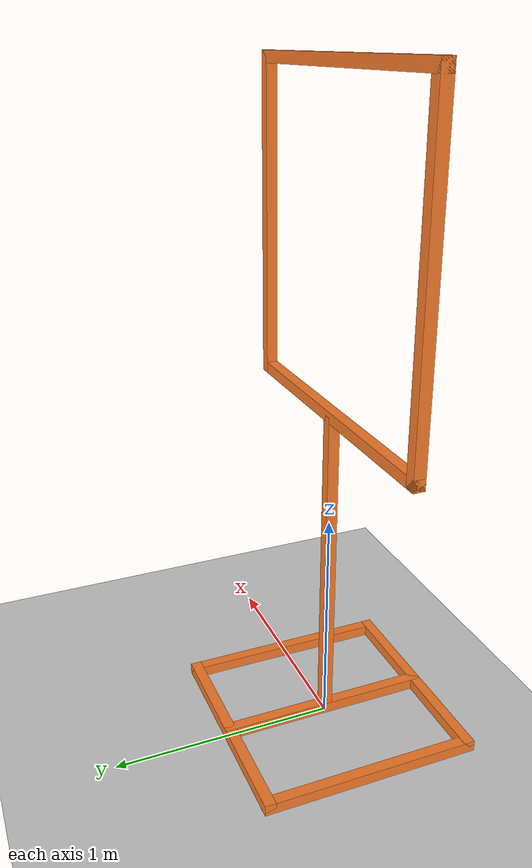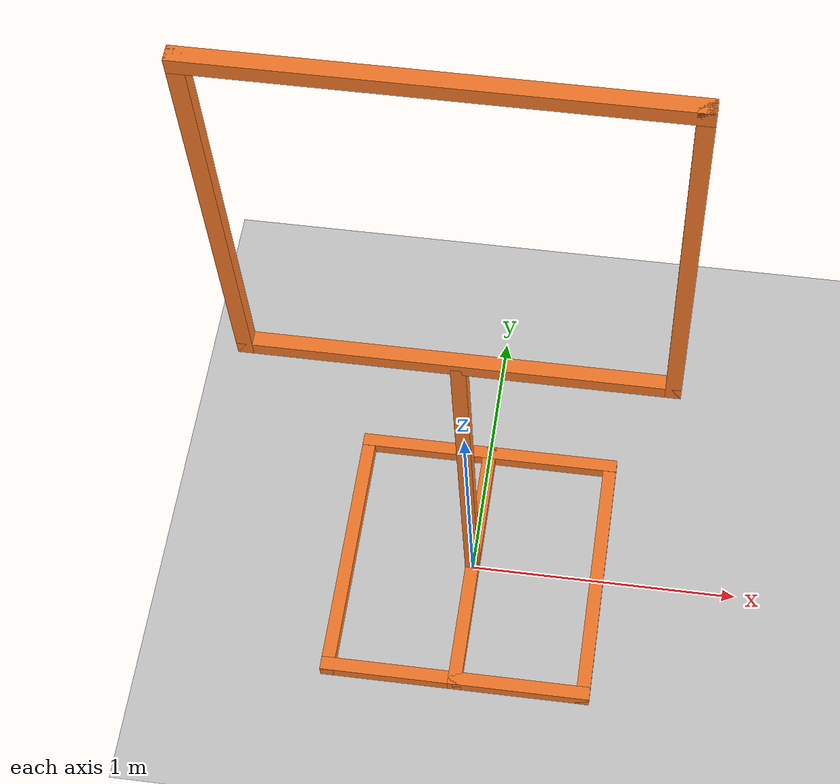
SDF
<sdf version="1.6">
 <world name="default">
  <model name="ground_plane">
   <static>1</static>
   <link name="link">
    <collision name="collision">
     <geometry><plane><normal>0 0 1</normal><size>100 100</size></plane></geometry>
     <surface><friction><ode><mu>100</mu><mu2>50</mu2></ode></friction></surface>
    </collision>
    <visual name="visual">
     <cast_shadows>0</cast_shadows>
     <geometry><plane><normal>0 0 1</normal><size>100 100</size></plane></geometry>
     <material>
      <script><uri>file://media/materials/scripts/gazebo.material</uri><name>Gazebo/Grey</name></script>
     </material>
    </visual>
    <velocity_decay><linear>0</linear><angular>0</angular></velocity_decay>
   </link>
  </model>
  <model name="adr2017_Small_Gate_6">
   <link name="link">
    <pose>0 0 0.75 0 -0 0</pose>
    <inertial>
     <mass>1</mass>
     <inertia>
      <ixx>0.166667</ixx>
      <ixy>0</ixy>
      <ixz>0</ixz>
      <iyy>0.166667</iyy>
      <iyz>0</iyz>
      <izz>0.166667</izz>
     </inertia>
    </inertial>
    <visual name="visual">
     <geometry><box><size>0.05 0.05 1.5</size></box></geometry>
     <material>
      <script><name>Gazebo/Grey</name><uri>file://media/materials/scripts/gazebo.material</uri></script>
      <shader type="vertex"><normal_map>__default__</normal_map></shader>
      <ambient>0.976 0.484 0.164 1</ambient>
      <diffuse>0.976 0.484 0.164 1</diffuse>
      <specular>0.01 0.01 0.01 1</specular>
      <emissive>0 0 0 1</emissive>
     </material>
    </visual>
    <collision name="collision">
     <geometry><box><size>0.05 0.05 1.5</size></box></geometry>
     <surface>
      <friction>
       <ode><mu>1</mu><mu2>1</mu2><fdir1>0 0 0</fdir1><slip1>0</slip1><slip2>0</slip2></ode>
       <torsional>
        <coefficient>1</coefficient>
        <patch_radius>0</patch_radius>
        <surface_radius>0</surface_radius>
        <use_patch_radius>1</use_patch_radius>
        <ode><slip>0</slip></ode>
       </torsional>
      </friction>
      <bounce><restitution_coefficient>0</restitution_coefficient><threshold>1e+06</threshold></bounce>
      <contact>
       <collide_without_contact>0</collide_without_contact>
       <collide_without_contact_bitmask>1</collide_without_contact_bitmask>
       <collide_bitmask>1</collide_bitmask>
       <ode>
        <soft_cfm>0</soft_cfm>
        <soft_erp>0.2</soft_erp>
        <kp>1e+13</kp>
        <kd>1</kd>
        <max_vel>0.01</max_vel>
        <min_depth>0</min_depth>
       </ode>
       <bullet>
        <split_impulse>1</split_impulse>
        <split_impulse_penetration_threshold>-0.01</split_impulse_penetration_threshold>
        <soft_cfm>0</soft_cfm>
        <soft_erp>0.2</soft_erp>
        <kp>1e+13</kp>
        <kd>1</kd>
       </bullet>
      </contact>
     </surface>
    </collision>
   </link>
   <link name="link_2">
    <pose>0 0 0.025 0 -0 0</pose>
    <inertial>
     <mass>1</mass>
     <inertia>
      <ixx>0.166667</ixx>
      <ixy>0</ixy>
      <ixz>0</ixz>
      <iyy>0.166667</iyy>
      <iyz>0</iyz>
      <izz>0.166667</izz>
     </inertia>
    </inertial>
    <visual name="visual">
     <geometry><box><size>0.05 1 0.05</size></box></geometry>
     <material>
      <script><name>Gazebo/Grey</name><uri>file://media/materials/scripts/gazebo.material</uri></script>
      <shader type="vertex"><normal_map>__default__</normal_map></shader>
      <ambient>0.976 0.484 0.164 1</ambient>
      <diffuse>0.976 0.484 0.164 1</diffuse>
      <specular>0.01 0.01 0.01 1</specular>
      <emissive>0 0 0 1</emissive>
     </material>
    </visual>
    <collision name="collision">
     <geometry><box><size>0.05 1 0.05</size></box></geometry>
     <surface>
      <friction>
       <ode><mu>1</mu><mu2>1</mu2><fdir1>0 0 0</fdir1><slip1>0</slip1><slip2>0</slip2></ode>
       <torsional>
        <coefficient>1</coefficient>
        <patch_radius>0</patch_radius>
        <surface_radius>0</surface_radius>
        <use_patch_radius>1</use_patch_radius>
        <ode><slip>0</slip></ode>
       </torsional>
      </friction>
      <bounce><restitution_coefficient>0</restitution_coefficient><threshold>1e+06</threshold></bounce>
      <contact>
       <collide_without_contact>0</collide_without_contact>
       <collide_without_contact_bitmask>1</collide_without_contact_bitmask>
       <collide_bitmask>1</collide_bitmask>
       <ode>
        <soft_cfm>0</soft_cfm>
        <soft_erp>0.2</soft_erp>
        <kp>1e+13</kp>
        <kd>1</kd>
        <max_vel>0.01</max_vel>
        <min_depth>0</min_depth>
       </ode>
       <bullet>
        <split_impulse>1</split_impulse>
        <split_impulse_penetration_threshold>-0.01</split_impulse_penetration_threshold>
        <soft_cfm>0</soft_cfm>
        <soft_erp>0.2</soft_erp>
        <kp>1e+13</kp>
        <kd>1</kd>
       </bullet>
      </contact>
     </surface>
    </collision>
   </link>
   <link name="link_3">
    <pose>0.475 0 0.024 0 -0 0</pose>
    <inertial>
     <mass>1</mass>
     <inertia>
      <ixx>0.166667</ixx>
      <ixy>0</ixy>
      <ixz>0</ixz>
      <iyy>0.166667</iyy>
      <iyz>0</iyz>
      <izz>0.166667</izz>
     </inertia>
    </inertial>
    <visual name="visual">
     <geometry><box><size>0.05 1 0.05</size></box></geometry>
     <material>
      <script><name>Gazebo/Grey</name><uri>file://media/materials/scripts/gazebo.material</uri></script>
      <shader type="vertex"><normal_map>__default__</normal_map></shader>
      <ambient>0.976 0.484 0.164 1</ambient>
      <diffuse>0.976 0.484 0.164 1</diffuse>
      <specular>0.01 0.01 0.01 1</specular>
      <emissive>0 0 0 1</emissive>
     </material>
    </visual>
    <collision name="collision">
     <geometry><box><size>0.05 1 0.05</size></box></geometry>
     <surface>
      <friction>
       <ode><mu>1</mu><mu2>1</mu2><fdir1>0 0 0</fdir1><slip1>0</slip1><slip2>0</slip2></ode>
       <torsional>
        <coefficient>1</coefficient>
        <patch_radius>0</patch_radius>
        <surface_radius>0</surface_radius>
        <use_patch_radius>1</use_patch_radius>
        <ode><slip>0</slip></ode>
       </torsional>
      </friction>
      <bounce><restitution_coefficient>0</restitution_coefficient><threshold>1e+06</threshold></bounce>
      <contact>
       <collide_without_contact>0</collide_without_contact>
       <collide_without_contact_bitmask>1</collide_without_contact_bitmask>
       <collide_bitmask>1</collide_bitmask>
       <ode>
        <soft_cfm>0</soft_cfm>
        <soft_erp>0.2</soft_erp>
        <kp>1e+13</kp>
        <kd>1</kd>
        <max_vel>0.01</max_vel>
        <min_depth>0</min_depth>
       </ode>
       <bullet>
        <split_impulse>1</split_impulse>
        <split_impulse_penetration_threshold>-0.01</split_impulse_penetration_threshold>
        <soft_cfm>0</soft_cfm>
        <soft_erp>0.2</soft_erp>
        <kp>1e+13</kp>
        <kd>1</kd>
       </bullet>
      </contact>
     </surface>
    </collision>
   </link>
   <link name="link_4">
    <pose>-0.475 0 0.024 0 -0 0</pose>
    <inertial>
     <mass>1</mass>
     <inertia>
      <ixx>0.166667</ixx>
      <ixy>0</ixy>
      <ixz>0</ixz>
      <iyy>0.166667</iyy>
      <iyz>0</iyz>
      <izz>0.166667</izz>
     </inertia>
    </inertial>
    <visual name="visual">
     <geometry><box><size>0.05 1 0.05</size></box></geometry>
     <material>
      <script><name>Gazebo/Grey</name><uri>file://media/materials/scripts/gazebo.material</uri></script>
      <shader type="vertex"><normal_map>__default__</normal_map></shader>
      <ambient>0.976 0.484 0.164 1</ambient>
      <diffuse>0.976 0.484 0.164 1</diffuse>
      <specular>0.01 0.01 0.01 1</specular>
      <emissive>0 0 0 1</emissive>
     </material>
    </visual>
    <collision name="collision">
     <geometry><box><size>0.05 1 0.05</size></box></geometry>
     <surface>
      <friction>
       <ode><mu>1</mu><mu2>1</mu2><fdir1>0 0 0</fdir1><slip1>0</slip1><slip2>0</slip2></ode>
       <torsional>
        <coefficient>1</coefficient>
        <patch_radius>0</patch_radius>
        <surface_radius>0</surface_radius>
        <use_patch_radius>1</use_patch_radius>
        <ode><slip>0</slip></ode>
       </torsional>
      </friction>
      <bounce><restitution_coefficient>0</restitution_coefficient><threshold>1e+06</threshold></bounce>
      <contact>
       <collide_without_contact>0</collide_without_contact>
       <collide_without_contact_bitmask>1</collide_without_contact_bitmask>
       <collide_bitmask>1</collide_bitmask>
       <ode>
        <soft_cfm>0</soft_cfm>
        <soft_erp>0.2</soft_erp>
        <kp>1e+13</kp>
        <kd>1</kd>
        <max_vel>0.01</max_vel>
        <min_depth>0</min_depth>
       </ode>
       <bullet>
        <split_impulse>1</split_impulse>
        <split_impulse_penetration_threshold>-0.01</split_impulse_penetration_threshold>
        <soft_cfm>0</soft_cfm>
        <soft_erp>0.2</soft_erp>
        <kp>1e+13</kp>
        <kd>1</kd>
       </bullet>
      </contact>
     </surface>
    </collision>
   </link>
   <link name="link_5">
    <pose>0 0.475 0.025 0 -0 0</pose>
    <inertial>
     <mass>1</mass>
     <inertia>
      <ixx>0.166667</ixx>
      <ixy>0</ixy>
      <ixz>0</ixz>
      <iyy>0.166667</iyy>
      <iyz>0</iyz>
      <izz>0.166667</izz>
     </inertia>
    </inertial>
    <visual name="visual">
     <geometry><box><size>1 0.05 0.05</size></box></geometry>
     <material>
      <script><name>Gazebo/Grey</name><uri>file://media/materials/scripts/gazebo.material</uri></script>
      <shader type="vertex"><normal_map>__default__</normal_map></shader>
      <ambient>0.976 0.484 0.164 1</ambient>
      <diffuse>0.976 0.484 0.164 1</diffuse>
      <specular>0.01 0.01 0.01 1</specular>
      <emissive>0 0 0 1</emissive>
     </material>
    </visual>
    <collision name="collision">
     <geometry><box><size>1 0.05 0.05</size></box></geometry>
     <surface>
      <friction>
       <ode><mu>1</mu><mu2>1</mu2><fdir1>0 0 0</fdir1><slip1>0</slip1><slip2>0</slip2></ode>
       <torsional>
        <coefficient>1</coefficient>
        <patch_radius>0</patch_radius>
        <surface_radius>0</surface_radius>
        <use_patch_radius>1</use_patch_radius>
        <ode><slip>0</slip></ode>
       </torsional>
      </friction>
      <bounce><restitution_coefficient>0</restitution_coefficient><threshold>1e+06</threshold></bounce>
      <contact>
       <collide_without_contact>0</collide_without_contact>
       <collide_without_contact_bitmask>1</collide_without_contact_bitmask>
       <collide_bitmask>1</collide_bitmask>
       <ode>
        <soft_cfm>0</soft_cfm>
        <soft_erp>0.2</soft_erp>
        <kp>1e+13</kp>
        <kd>1</kd>
        <max_vel>0.01</max_vel>
        <min_depth>0</min_depth>
       </ode>
       <bullet>
        <split_impulse>1</split_impulse>
        <split_impulse_penetration_threshold>-0.01</split_impulse_penetration_threshold>
        <soft_cfm>0</soft_cfm>
        <soft_erp>0.2</soft_erp>
        <kp>1e+13</kp>
        <kd>1</kd>
       </bullet>
      </contact>
     </surface>
    </collision>
   </link>
   <link name="link_6">
    <pose>0 -0.475 0.025 0 -0 0</pose>
    <inertial>
     <mass>1</mass>
     <inertia>
      <ixx>0.166667</ixx>
      <ixy>0</ixy>
      <ixz>0</ixz>
      <iyy>0.166667</iyy>
      <iyz>0</iyz>
      <izz>0.166667</izz>
     </inertia>
    </inertial>
    <visual name="visual">
     <geometry><box><size>1 0.05 0.05</size></box></geometry>
     <material>
      <script><name>Gazebo/Grey</name><uri>file://media/materials/scripts/gazebo.material</uri></script>
      <shader type="vertex"><normal_map>__default__</normal_map></shader>
      <ambient>0.976 0.484 0.164 1</ambient>
      <diffuse>0.976 0.484 0.164 1</diffuse>
      <specular>0.01 0.01 0.01 1</specular>
      <emissive>0 0 0 1</emissive>
     </material>
    </visual>
    <collision name="collision">
     <geometry><box><size>1 0.05 0.05</size></box></geometry>
     <surface>
      <friction>
       <ode><mu>1</mu><mu2>1</mu2><fdir1>0 0 0</fdir1><slip1>0</slip1><slip2>0</slip2></ode>
       <torsional>
        <coefficient>1</coefficient>
        <patch_radius>0</patch_radius>
        <surface_radius>0</surface_radius>
        <use_patch_radius>1</use_patch_radius>
        <ode><slip>0</slip></ode>
       </torsional>
      </friction>
      <bounce><restitution_coefficient>0</restitution_coefficient><threshold>1e+06</threshold></bounce>
      <contact>
       <collide_without_contact>0</collide_without_contact>
       <collide_without_contact_bitmask>1</collide_without_contact_bitmask>
       <collide_bitmask>1</collide_bitmask>
       <ode>
        <soft_cfm>0</soft_cfm>
        <soft_erp>0.2</soft_erp>
        <kp>1e+13</kp>
        <kd>1</kd>
        <max_vel>0.01</max_vel>
        <min_depth>0</min_depth>
       </ode>
       <bullet>
        <split_impulse>1</split_impulse>
        <split_impulse_penetration_threshold>-0.01</split_impulse_penetration_threshold>
        <soft_cfm>0</soft_cfm>
        <soft_erp>0.2</soft_erp>
        <kp>1e+13</kp>
        <kd>1</kd>
       </bullet>
      </contact>
     </surface>
    </collision>
   </link>
   <link name="link_7">
    <pose>0 0 2.85 0 -0 0</pose>
    <inertial>
     <mass>1</mass>
     <inertia>
      <ixx>0.166667</ixx>
      <ixy>0</ixy>
      <ixz>0</ixz>
      <iyy>0.166667</iyy>
      <iyz>0</iyz>
      <izz>0.166667</izz>
     </inertia>
    </inertial>
    <visual name="visual">
     <geometry><box><size>1.4 0.05 0.05</size></box></geometry>
     <material>
      <script><name>Gazebo/Grey</name><uri>file://media/materials/scripts/gazebo.material</uri></script>
      <shader type="vertex"><normal_map>__default__</normal_map></shader>
      <ambient>0.976 0.484 0.164 1</ambient>
      <diffuse>0.976 0.484 0.164 1</diffuse>
      <specular>0.01 0.01 0.01 1</specular>
      <emissive>0 0 0 1</emissive>
     </material>
    </visual>
    <collision name="collision">
     <geometry><box><size>1.4 0.05 0.05</size></box></geometry>
     <surface>
      <friction>
       <ode><mu>1</mu><mu2>1</mu2><fdir1>0 0 0</fdir1><slip1>0</slip1><slip2>0</slip2></ode>
       <torsional>
        <coefficient>1</coefficient>
        <patch_radius>0</patch_radius>
        <surface_radius>0</surface_radius>
        <use_patch_radius>1</use_patch_radius>
        <ode><slip>0</slip></ode>
       </torsional>
      </friction>
      <bounce><restitution_coefficient>0</restitution_coefficient><threshold>1e+06</threshold></bounce>
      <contact>
       <collide_without_contact>0</collide_without_contact>
       <collide_without_contact_bitmask>1</collide_without_contact_bitmask>
       <collide_bitmask>1</collide_bitmask>
       <ode>
        <soft_cfm>0</soft_cfm>
        <soft_erp>0.2</soft_erp>
        <kp>1e+13</kp>
        <kd>1</kd>
        <max_vel>0.01</max_vel>
        <min_depth>0</min_depth>
       </ode>
       <bullet>
        <split_impulse>1</split_impulse>
        <split_impulse_penetration_threshold>-0.01</split_impulse_penetration_threshold>
        <soft_cfm>0</soft_cfm>
        <soft_erp>0.2</soft_erp>
        <kp>1e+13</kp>
        <kd>1</kd>
       </bullet>
      </contact>
     </surface>
    </collision>
   </link>
   <link name="link_8">
    <pose>0 0 1.5 0 -0 0</pose>
    <inertial>
     <mass>1</mass>
     <inertia>
      <ixx>0.166667</ixx>
      <ixy>0</ixy>
      <ixz>0</ixz>
      <iyy>0.166667</iyy>
      <iyz>0</iyz>
      <izz>0.166667</izz>
     </inertia>
    </inertial>
    <visual name="visual">
     <geometry><box><size>1.4 0.05 0.05</size></box></geometry>
     <material>
      <script><name>Gazebo/Grey</name><uri>file://media/materials/scripts/gazebo.material</uri></script>
      <shader type="vertex"><normal_map>__default__</normal_map></shader>
      <ambient>0.976 0.484 0.164 1</ambient>
      <diffuse>0.976 0.484 0.164 1</diffuse>
      <specular>0.01 0.01 0.01 1</specular>
      <emissive>0 0 0 1</emissive>
     </material>
    </visual>
    <collision name="collision">
     <geometry><box><size>1.4 0.05 0.05</size></box></geometry>
     <surface>
      <friction>
       <ode><mu>1</mu><mu2>1</mu2><fdir1>0 0 0</fdir1><slip1>0</slip1><slip2>0</slip2></ode>
       <torsional>
        <coefficient>1</coefficient>
        <patch_radius>0</patch_radius>
        <surface_radius>0</surface_radius>
        <use_patch_radius>1</use_patch_radius>
        <ode><slip>0</slip></ode>
       </torsional>
      </friction>
      <bounce><restitution_coefficient>0</restitution_coefficient><threshold>1e+06</threshold></bounce>
      <contact>
       <collide_without_contact>0</collide_without_contact>
       <collide_without_contact_bitmask>1</collide_without_contact_bitmask>
       <collide_bitmask>1</collide_bitmask>
       <ode>
        <soft_cfm>0</soft_cfm>
        <soft_erp>0.2</soft_erp>
        <kp>1e+13</kp>
        <kd>1</kd>
        <max_vel>0.01</max_vel>
        <min_depth>0</min_depth>
       </ode>
       <bullet>
        <split_impulse>1</split_impulse>
        <split_impulse_penetration_threshold>-0.01</split_impulse_penetration_threshold>
        <soft_cfm>0</soft_cfm>
        <soft_erp>0.2</soft_erp>
        <kp>1e+13</kp>
        <kd>1</kd>
       </bullet>
      </contact>
     </surface>
    </collision>
   </link>
   <link name="link_9">
    <pose>-0.675 0 1.475 0 -0 0</pose>
    <inertial>
     <mass>1</mass>
     <inertia>
      <ixx>0.166667</ixx>
      <ixy>0</ixy>
      <ixz>0</ixz>
      <iyy>0.166667</iyy>
      <iyz>0</iyz>
      <izz>0.166667</izz>
     </inertia>
    </inertial>
    <visual name="visual">
     <geometry><box><size>0.05 0.05 1.4</size></box></geometry>
     <material>
      <script><name>Gazebo/Grey</name><uri>file://media/materials/scripts/gazebo.material</uri></script>
      <shader type="vertex"><normal_map>__default__</normal_map></shader>
      <ambient>0.976 0.484 0.164 1</ambient>
      <diffuse>0.976 0.484 0.164 1</diffuse>
      <specular>0.01 0.01 0.01 1</specular>
      <emissive>0 0 0 1</emissive>
     </material>
     <pose>0 0 0.7 0 -0 0</pose>
    </visual>
    <collision name="collision">
     <pose>0 0 0.7 0 -0 0</pose>
     <geometry><box><size>0.05 0.05 1.4</size></box></geometry>
     <surface>
      <friction>
       <ode><mu>1</mu><mu2>1</mu2><fdir1>0 0 0</fdir1><slip1>0</slip1><slip2>0</slip2></ode>
       <torsional>
        <coefficient>1</coefficient>
        <patch_radius>0</patch_radius>
        <surface_radius>0</surface_radius>
        <use_patch_radius>1</use_patch_radius>
        <ode><slip>0</slip></ode>
       </torsional>
      </friction>
      <bounce><restitution_coefficient>0</restitution_coefficient><threshold>1e+06</threshold></bounce>
      <contact>
       <collide_without_contact>0</collide_without_contact>
       <collide_without_contact_bitmask>1</collide_without_contact_bitmask>
       <collide_bitmask>1</collide_bitmask>
       <ode>
        <soft_cfm>0</soft_cfm>
        <soft_erp>0.2</soft_erp>
        <kp>1e+13</kp>
        <kd>1</kd>
        <max_vel>0.01</max_vel>
        <min_depth>0</min_depth>
       </ode>
       <bullet>
        <split_impulse>1</split_impulse>
        <split_impulse_penetration_threshold>-0.01</split_impulse_penetration_threshold>
        <soft_cfm>0</soft_cfm>
        <soft_erp>0.2</soft_erp>
        <kp>1e+13</kp>
        <kd>1</kd>
       </bullet>
      </contact>
     </surface>
    </collision>
   </link>
   <link name="link_10">
    <pose>0.675 0 1.475 0 -0 0</pose>
    <inertial>
     <mass>1</mass>
     <inertia>
      <ixx>0.166667</ixx>
      <ixy>0</ixy>
      <ixz>0</ixz>
      <iyy>0.166667</iyy>
      <iyz>0</iyz>
      <izz>0.166667</izz>
     </inertia>
    </inertial>
    <visual name="visual">
     <geometry><box><size>0.05 0.05 1.4</size></box></geometry>
     <material>
      <script><name>Gazebo/Grey</name><uri>file://media/materials/scripts/gazebo.material</uri></script>
      <shader type="vertex"><normal_map>__default__</normal_map></shader>
      <ambient>0.976 0.484 0.164 1</ambient>
      <diffuse>0.976 0.484 0.164 1</diffuse>
      <specular>0.01 0.01 0.01 1</specular>
      <emissive>0 0 0 1</emissive>
     </material>
     <pose>0 0 0.7 0 -0 0</pose>
    </visual>
    <collision name="collision">
     <pose>0 0 0.7 0 -0 0</pose>
     <geometry><box><size>0.05 0.05 1.4</size></box></geometry>
     <surface>
      <friction>
       <ode><mu>1</mu><mu2>1</mu2><fdir1>0 0 0</fdir1><slip1>0</slip1><slip2>0</slip2></ode>
       <torsional>
        <coefficient>1</coefficient>
        <patch_radius>0</patch_radius>
        <surface_radius>0</surface_radius>
        <use_patch_radius>1</use_patch_radius>
        <ode><slip>0</slip></ode>
       </torsional>
      </friction>
      <bounce><restitution_coefficient>0</restitution_coefficient><threshold>1e+06</threshold></bounce>
      <contact>
       <collide_without_contact>0</collide_without_contact>
       <collide_without_contact_bitmask>1</collide_without_contact_bitmask>
       <collide_bitmask>1</collide_bitmask>
       <ode>
        <soft_cfm>0</soft_cfm>
        <soft_erp>0.2</soft_erp>
        <kp>1e+13</kp>
        <kd>1</kd>
        <max_vel>0.01</max_vel>
        <min_depth>0</min_depth>
       </ode>
       <bullet>
        <split_impulse>1</split_impulse>
        <split_impulse_penetration_threshold>-0.01</split_impulse_penetration_threshold>
        <soft_cfm>0</soft_cfm>
        <soft_erp>0.2</soft_erp>
        <kp>1e+13</kp>
        <kd>1</kd>
       </bullet>
      </contact>
     </surface>
    </collision>
   </link>
   <static>1</static>
  </model>
 </world>
</sdf>
